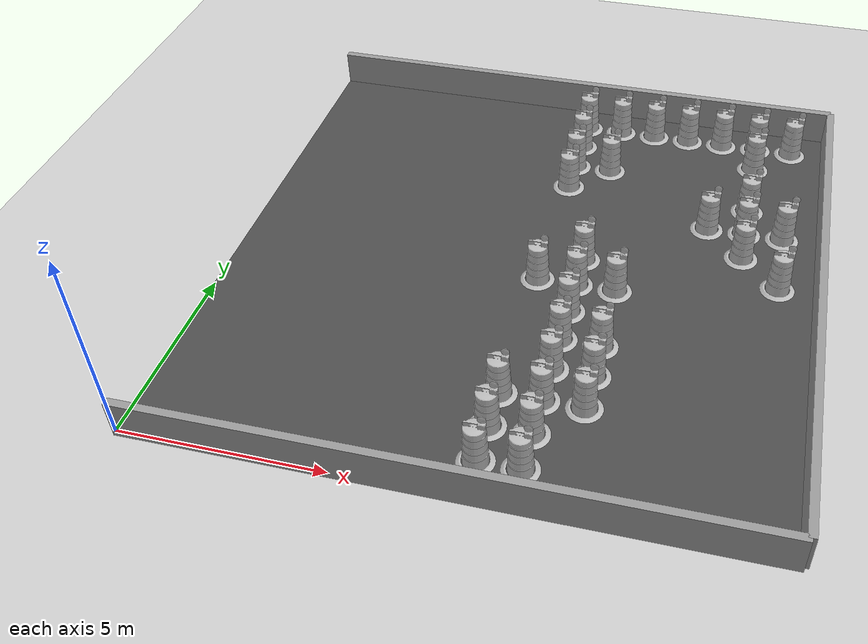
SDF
<sdf version="1.4">
 <world name="default">
  <include><uri>model://ground_plane</uri></include>
  <include><uri>model://sun</uri></include>
  <model name="grey_wall">
   <static>1</static>
   <link name="link">
    <visual name="visual">
     <cast_shadows>0</cast_shadows>
     <geometry><box><size>15 0.2 2</size></box></geometry>
     <material>
      <script>
       <uri>model://grey_wall/materials/scripts</uri>
       <uri>model://grey_wall/materials/textures</uri>
       <name>vrc/grey_wall</name>
      </script>
     </material>
    </visual>
   </link>
   <pose>7.5 0 0 0 0 0</pose>
  </model>
  <model name="grey_wall">
   <static>1</static>
   <link name="link">
    <visual name="visual">
     <cast_shadows>0</cast_shadows>
     <geometry><box><size>15 0.2 2</size></box></geometry>
     <material>
      <script>
       <uri>model://grey_wall/materials/scripts</uri>
       <uri>model://grey_wall/materials/textures</uri>
       <name>vrc/grey_wall</name>
      </script>
     </material>
    </visual>
   </link>
   <pose>15 7.5 0 0 0 -1.57079632679</pose>
  </model>
  <model name="grey_wall">
   <static>1</static>
   <link name="link">
    <visual name="visual">
     <cast_shadows>0</cast_shadows>
     <geometry><box><size>15 0.2 2</size></box></geometry>
     <material>
      <script>
       <uri>model://grey_wall/materials/scripts</uri>
       <uri>model://grey_wall/materials/textures</uri>
       <name>vrc/grey_wall</name>
      </script>
     </material>
    </visual>
   </link>
   <pose>7.5 15 0 0 0 3.14159265359</pose>
  </model>
  <model name="asphalt_plane">
   <static>1</static>
   <link name="link">
    <visual name="visual">
     <cast_shadows>0</cast_shadows>
     <geometry><box><size>15 15 0.1</size></box></geometry>
     <material>
      <script>
       <uri>model://asphalt_plane/materials/scripts</uri>
       <uri>model://asphalt_plane/materials/textures</uri>
       <name>vrc/asphalt</name>
      </script>
     </material>
    </visual>
   </link>
   <pose>7.5 7.5 0 0 0 0</pose>
  </model>
  <model name="Construction Barrel">
   <link name="link">
    <collision name="collision">
     <geometry>
      <mesh><uri>model://construction_barrel/meshes/construction_barrel.dae</uri><scale>1 1 1</scale></mesh>
     </geometry>
    </collision>
    <visual name="visual">
     <geometry><mesh><uri>model://construction_barrel/meshes/construction_barrel.dae</uri></mesh></geometry>
    </visual>
   </link>
   <pose>8 1 0 0 0 0</pose>
   <static>1</static>
  </model>
  <model name="Construction Barrel">
   <link name="link">
    <collision name="collision">
     <geometry>
      <mesh><uri>model://construction_barrel/meshes/construction_barrel.dae</uri><scale>1 1 1</scale></mesh>
     </geometry>
    </collision>
    <visual name="visual">
     <geometry><mesh><uri>model://construction_barrel/meshes/construction_barrel.dae</uri></mesh></geometry>
    </visual>
   </link>
   <pose>8 2 0 0 0 0</pose>
   <static>1</static>
  </model>
  <model name="Construction Barrel">
   <link name="link">
    <collision name="collision">
     <geometry>
      <mesh><uri>model://construction_barrel/meshes/construction_barrel.dae</uri><scale>1 1 1</scale></mesh>
     </geometry>
    </collision>
    <visual name="visual">
     <geometry><mesh><uri>model://construction_barrel/meshes/construction_barrel.dae</uri></mesh></geometry>
    </visual>
   </link>
   <pose>8 3 0 0 0 0</pose>
   <static>1</static>
  </model>
  <model name="Construction Barrel">
   <link name="link">
    <collision name="collision">
     <geometry>
      <mesh><uri>model://construction_barrel/meshes/construction_barrel.dae</uri><scale>1 1 1</scale></mesh>
     </geometry>
    </collision>
    <visual name="visual">
     <geometry><mesh><uri>model://construction_barrel/meshes/construction_barrel.dae</uri></mesh></geometry>
    </visual>
   </link>
   <pose>8 7 0 0 0 0</pose>
   <static>1</static>
  </model>
  <model name="Construction Barrel">
   <link name="link">
    <collision name="collision">
     <geometry>
      <mesh><uri>model://construction_barrel/meshes/construction_barrel.dae</uri><scale>1 1 1</scale></mesh>
     </geometry>
    </collision>
    <visual name="visual">
     <geometry><mesh><uri>model://construction_barrel/meshes/construction_barrel.dae</uri></mesh></geometry>
    </visual>
   </link>
   <pose>8 11 0 0 0 0</pose>
   <static>1</static>
  </model>
  <model name="Construction Barrel">
   <link name="link">
    <collision name="collision">
     <geometry>
      <mesh><uri>model://construction_barrel/meshes/construction_barrel.dae</uri><scale>1 1 1</scale></mesh>
     </geometry>
    </collision>
    <visual name="visual">
     <geometry><mesh><uri>model://construction_barrel/meshes/construction_barrel.dae</uri></mesh></geometry>
    </visual>
   </link>
   <pose>8 12 0 0 0 0</pose>
   <static>1</static>
  </model>
  <model name="Construction Barrel">
   <link name="link">
    <collision name="collision">
     <geometry>
      <mesh><uri>model://construction_barrel/meshes/construction_barrel.dae</uri><scale>1 1 1</scale></mesh>
     </geometry>
    </collision>
    <visual name="visual">
     <geometry><mesh><uri>model://construction_barrel/meshes/construction_barrel.dae</uri></mesh></geometry>
    </visual>
   </link>
   <pose>8 13 0 0 0 0</pose>
   <static>1</static>
  </model>
  <model name="Construction Barrel">
   <link name="link">
    <collision name="collision">
     <geometry>
      <mesh><uri>model://construction_barrel/meshes/construction_barrel.dae</uri><scale>1 1 1</scale></mesh>
     </geometry>
    </collision>
    <visual name="visual">
     <geometry><mesh><uri>model://construction_barrel/meshes/construction_barrel.dae</uri></mesh></geometry>
    </visual>
   </link>
   <pose>8 14 0 0 0 0</pose>
   <static>1</static>
  </model>
  <model name="Construction Barrel">
   <link name="link">
    <collision name="collision">
     <geometry>
      <mesh><uri>model://construction_barrel/meshes/construction_barrel.dae</uri><scale>1 1 1</scale></mesh>
     </geometry>
    </collision>
    <visual name="visual">
     <geometry><mesh><uri>model://construction_barrel/meshes/construction_barrel.dae</uri></mesh></geometry>
    </visual>
   </link>
   <pose>9 1 0 0 0 0</pose>
   <static>1</static>
  </model>
  <model name="Construction Barrel">
   <link name="link">
    <collision name="collision">
     <geometry>
      <mesh><uri>model://construction_barrel/meshes/construction_barrel.dae</uri><scale>1 1 1</scale></mesh>
     </geometry>
    </collision>
    <visual name="visual">
     <geometry><mesh><uri>model://construction_barrel/meshes/construction_barrel.dae</uri></mesh></geometry>
    </visual>
   </link>
   <pose>9 2 0 0 0 0</pose>
   <static>1</static>
  </model>
  <model name="Construction Barrel">
   <link name="link">
    <collision name="collision">
     <geometry>
      <mesh><uri>model://construction_barrel/meshes/construction_barrel.dae</uri><scale>1 1 1</scale></mesh>
     </geometry>
    </collision>
    <visual name="visual">
     <geometry><mesh><uri>model://construction_barrel/meshes/construction_barrel.dae</uri></mesh></geometry>
    </visual>
   </link>
   <pose>9 3 0 0 0 0</pose>
   <static>1</static>
  </model>
  <model name="Construction Barrel">
   <link name="link">
    <collision name="collision">
     <geometry>
      <mesh><uri>model://construction_barrel/meshes/construction_barrel.dae</uri><scale>1 1 1</scale></mesh>
     </geometry>
    </collision>
    <visual name="visual">
     <geometry><mesh><uri>model://construction_barrel/meshes/construction_barrel.dae</uri></mesh></geometry>
    </visual>
   </link>
   <pose>9 4 0 0 0 0</pose>
   <static>1</static>
  </model>
  <model name="Construction Barrel">
   <link name="link">
    <collision name="collision">
     <geometry>
      <mesh><uri>model://construction_barrel/meshes/construction_barrel.dae</uri><scale>1 1 1</scale></mesh>
     </geometry>
    </collision>
    <visual name="visual">
     <geometry><mesh><uri>model://construction_barrel/meshes/construction_barrel.dae</uri></mesh></geometry>
    </visual>
   </link>
   <pose>9 5 0 0 0 0</pose>
   <static>1</static>
  </model>
  <model name="Construction Barrel">
   <link name="link">
    <collision name="collision">
     <geometry>
      <mesh><uri>model://construction_barrel/meshes/construction_barrel.dae</uri><scale>1 1 1</scale></mesh>
     </geometry>
    </collision>
    <visual name="visual">
     <geometry><mesh><uri>model://construction_barrel/meshes/construction_barrel.dae</uri></mesh></geometry>
    </visual>
   </link>
   <pose>9 6 0 0 0 0</pose>
   <static>1</static>
  </model>
  <model name="Construction Barrel">
   <link name="link">
    <collision name="collision">
     <geometry>
      <mesh><uri>model://construction_barrel/meshes/construction_barrel.dae</uri><scale>1 1 1</scale></mesh>
     </geometry>
    </collision>
    <visual name="visual">
     <geometry><mesh><uri>model://construction_barrel/meshes/construction_barrel.dae</uri></mesh></geometry>
    </visual>
   </link>
   <pose>9 7 0 0 0 0</pose>
   <static>1</static>
  </model>
  <model name="Construction Barrel">
   <link name="link">
    <collision name="collision">
     <geometry>
      <mesh><uri>model://construction_barrel/meshes/construction_barrel.dae</uri><scale>1 1 1</scale></mesh>
     </geometry>
    </collision>
    <visual name="visual">
     <geometry><mesh><uri>model://construction_barrel/meshes/construction_barrel.dae</uri></mesh></geometry>
    </visual>
   </link>
   <pose>9 8 0 0 0 0</pose>
   <static>1</static>
  </model>
  <model name="Construction Barrel">
   <link name="link">
    <collision name="collision">
     <geometry>
      <mesh><uri>model://construction_barrel/meshes/construction_barrel.dae</uri><scale>1 1 1</scale></mesh>
     </geometry>
    </collision>
    <visual name="visual">
     <geometry><mesh><uri>model://construction_barrel/meshes/construction_barrel.dae</uri></mesh></geometry>
    </visual>
   </link>
   <pose>9 12 0 0 0 0</pose>
   <static>1</static>
  </model>
  <model name="Construction Barrel">
   <link name="link">
    <collision name="collision">
     <geometry>
      <mesh><uri>model://construction_barrel/meshes/construction_barrel.dae</uri><scale>1 1 1</scale></mesh>
     </geometry>
    </collision>
    <visual name="visual">
     <geometry><mesh><uri>model://construction_barrel/meshes/construction_barrel.dae</uri></mesh></geometry>
    </visual>
   </link>
   <pose>9 14 0 0 0 0</pose>
   <static>1</static>
  </model>
  <model name="Construction Barrel">
   <link name="link">
    <collision name="collision">
     <geometry>
      <mesh><uri>model://construction_barrel/meshes/construction_barrel.dae</uri><scale>1 1 1</scale></mesh>
     </geometry>
    </collision>
    <visual name="visual">
     <geometry><mesh><uri>model://construction_barrel/meshes/construction_barrel.dae</uri></mesh></geometry>
    </visual>
   </link>
   <pose>10 3 0 0 0 0</pose>
   <static>1</static>
  </model>
  <model name="Construction Barrel">
   <link name="link">
    <collision name="collision">
     <geometry>
      <mesh><uri>model://construction_barrel/meshes/construction_barrel.dae</uri><scale>1 1 1</scale></mesh>
     </geometry>
    </collision>
    <visual name="visual">
     <geometry><mesh><uri>model://construction_barrel/meshes/construction_barrel.dae</uri></mesh></geometry>
    </visual>
   </link>
   <pose>10 4 0 0 0 0</pose>
   <static>1</static>
  </model>
  <model name="Construction Barrel">
   <link name="link">
    <collision name="collision">
     <geometry>
      <mesh><uri>model://construction_barrel/meshes/construction_barrel.dae</uri><scale>1 1 1</scale></mesh>
     </geometry>
    </collision>
    <visual name="visual">
     <geometry><mesh><uri>model://construction_barrel/meshes/construction_barrel.dae</uri></mesh></geometry>
    </visual>
   </link>
   <pose>10 5 0 0 0 0</pose>
   <static>1</static>
  </model>
  <model name="Construction Barrel">
   <link name="link">
    <collision name="collision">
     <geometry>
      <mesh><uri>model://construction_barrel/meshes/construction_barrel.dae</uri><scale>1 1 1</scale></mesh>
     </geometry>
    </collision>
    <visual name="visual">
     <geometry><mesh><uri>model://construction_barrel/meshes/construction_barrel.dae</uri></mesh></geometry>
    </visual>
   </link>
   <pose>10 7 0 0 0 0</pose>
   <static>1</static>
  </model>
  <model name="Construction Barrel">
   <link name="link">
    <collision name="collision">
     <geometry>
      <mesh><uri>model://construction_barrel/meshes/construction_barrel.dae</uri><scale>1 1 1</scale></mesh>
     </geometry>
    </collision>
    <visual name="visual">
     <geometry><mesh><uri>model://construction_barrel/meshes/construction_barrel.dae</uri></mesh></geometry>
    </visual>
   </link>
   <pose>10 14 0 0 0 0</pose>
   <static>1</static>
  </model>
  <model name="Construction Barrel">
   <link name="link">
    <collision name="collision">
     <geometry>
      <mesh><uri>model://construction_barrel/meshes/construction_barrel.dae</uri><scale>1 1 1</scale></mesh>
     </geometry>
    </collision>
    <visual name="visual">
     <geometry><mesh><uri>model://construction_barrel/meshes/construction_barrel.dae</uri></mesh></geometry>
    </visual>
   </link>
   <pose>11 14 0 0 0 0</pose>
   <static>1</static>
  </model>
  <model name="Construction Barrel">
   <link name="link">
    <collision name="collision">
     <geometry>
      <mesh><uri>model://construction_barrel/meshes/construction_barrel.dae</uri><scale>1 1 1</scale></mesh>
     </geometry>
    </collision>
    <visual name="visual">
     <geometry><mesh><uri>model://construction_barrel/meshes/construction_barrel.dae</uri></mesh></geometry>
    </visual>
   </link>
   <pose>12 10 0 0 0 0</pose>
   <static>1</static>
  </model>
  <model name="Construction Barrel">
   <link name="link">
    <collision name="collision">
     <geometry>
      <mesh><uri>model://construction_barrel/meshes/construction_barrel.dae</uri><scale>1 1 1</scale></mesh>
     </geometry>
    </collision>
    <visual name="visual">
     <geometry><mesh><uri>model://construction_barrel/meshes/construction_barrel.dae</uri></mesh></geometry>
    </visual>
   </link>
   <pose>12 14 0 0 0 0</pose>
   <static>1</static>
  </model>
  <model name="Construction Barrel">
   <link name="link">
    <collision name="collision">
     <geometry>
      <mesh><uri>model://construction_barrel/meshes/construction_barrel.dae</uri><scale>1 1 1</scale></mesh>
     </geometry>
    </collision>
    <visual name="visual">
     <geometry><mesh><uri>model://construction_barrel/meshes/construction_barrel.dae</uri></mesh></geometry>
    </visual>
   </link>
   <pose>13 9 0 0 0 0</pose>
   <static>1</static>
  </model>
  <model name="Construction Barrel">
   <link name="link">
    <collision name="collision">
     <geometry>
      <mesh><uri>model://construction_barrel/meshes/construction_barrel.dae</uri><scale>1 1 1</scale></mesh>
     </geometry>
    </collision>
    <visual name="visual">
     <geometry><mesh><uri>model://construction_barrel/meshes/construction_barrel.dae</uri></mesh></geometry>
    </visual>
   </link>
   <pose>13 10 0 0 0 0</pose>
   <static>1</static>
  </model>
  <model name="Construction Barrel">
   <link name="link">
    <collision name="collision">
     <geometry>
      <mesh><uri>model://construction_barrel/meshes/construction_barrel.dae</uri><scale>1 1 1</scale></mesh>
     </geometry>
    </collision>
    <visual name="visual">
     <geometry><mesh><uri>model://construction_barrel/meshes/construction_barrel.dae</uri></mesh></geometry>
    </visual>
   </link>
   <pose>13 11 0 0 0 0</pose>
   <static>1</static>
  </model>
  <model name="Construction Barrel">
   <link name="link">
    <collision name="collision">
     <geometry>
      <mesh><uri>model://construction_barrel/meshes/construction_barrel.dae</uri><scale>1 1 1</scale></mesh>
     </geometry>
    </collision>
    <visual name="visual">
     <geometry><mesh><uri>model://construction_barrel/meshes/construction_barrel.dae</uri></mesh></geometry>
    </visual>
   </link>
   <pose>13 13 0 0 0 0</pose>
   <static>1</static>
  </model>
  <model name="Construction Barrel">
   <link name="link">
    <collision name="collision">
     <geometry>
      <mesh><uri>model://construction_barrel/meshes/construction_barrel.dae</uri><scale>1 1 1</scale></mesh>
     </geometry>
    </collision>
    <visual name="visual">
     <geometry><mesh><uri>model://construction_barrel/meshes/construction_barrel.dae</uri></mesh></geometry>
    </visual>
   </link>
   <pose>13 14 0 0 0 0</pose>
   <static>1</static>
  </model>
  <model name="Construction Barrel">
   <link name="link">
    <collision name="collision">
     <geometry>
      <mesh><uri>model://construction_barrel/meshes/construction_barrel.dae</uri><scale>1 1 1</scale></mesh>
     </geometry>
    </collision>
    <visual name="visual">
     <geometry><mesh><uri>model://construction_barrel/meshes/construction_barrel.dae</uri></mesh></geometry>
    </visual>
   </link>
   <pose>14 8 0 0 0 0</pose>
   <static>1</static>
  </model>
  <model name="Construction Barrel">
   <link name="link">
    <collision name="collision">
     <geometry>
      <mesh><uri>model://construction_barrel/meshes/construction_barrel.dae</uri><scale>1 1 1</scale></mesh>
     </geometry>
    </collision>
    <visual name="visual">
     <geometry><mesh><uri>model://construction_barrel/meshes/construction_barrel.dae</uri></mesh></geometry>
    </visual>
   </link>
   <pose>14 10 0 0 0 0</pose>
   <static>1</static>
  </model>
  <model name="Construction Barrel">
   <link name="link">
    <collision name="collision">
     <geometry>
      <mesh><uri>model://construction_barrel/meshes/construction_barrel.dae</uri><scale>1 1 1</scale></mesh>
     </geometry>
    </collision>
    <visual name="visual">
     <geometry><mesh><uri>model://construction_barrel/meshes/construction_barrel.dae</uri></mesh></geometry>
    </visual>
   </link>
   <pose>14 14 0 0 0 0</pose>
   <static>1</static>
  </model>
 </world>
</sdf>
